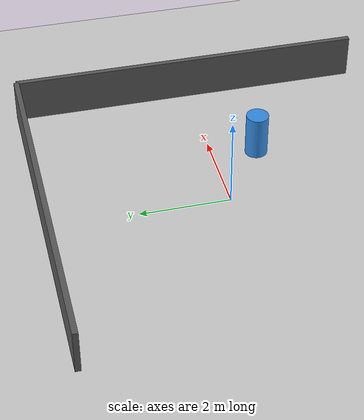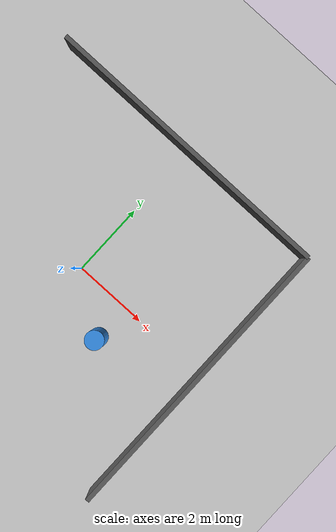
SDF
<?xml version="1.0" ?>
<sdf version="1.6">
  <world name="agt_operator_demo">
    <include>
      <uri>model://sun</uri>
    </include>
    <include>
      <uri>model://ground_plane</uri>
    </include>
    <model name="north_wall">
      <pose>0 4 0.5 0 0 0</pose>
      <static>true</static>
      <link name="link">
        <collision name="collision">
          <geometry><box><size>8 0.12 1.0</size></box></geometry>
        </collision>
        <visual name="visual">
          <geometry><box><size>8 0.12 1.0</size></box></geometry>
          <material><ambient>0.35 0.35 0.35 1</ambient></material>
        </visual>
      </link>
    </model>
    <model name="east_wall">
      <pose>4 0 0.5 0 0 0</pose>
      <static>true</static>
      <link name="link">
        <collision name="collision">
          <geometry><box><size>0.12 8 1.0</size></box></geometry>
        </collision>
        <visual name="visual">
          <geometry><box><size>0.12 8 1.0</size></box></geometry>
          <material><ambient>0.35 0.35 0.35 1</ambient></material>
        </visual>
      </link>
    </model>
    <model name="test_pillar">
      <pose>1.5 -1.0 0.5 0 0 0</pose>
      <static>true</static>
      <link name="link">
        <collision name="collision">
          <geometry><cylinder><radius>0.25</radius><length>1.0</length></cylinder></geometry>
        </collision>
        <visual name="visual">
          <geometry><cylinder><radius>0.25</radius><length>1.0</length></cylinder></geometry>
          <material><ambient>0.2 0.55 0.9 1</ambient></material>
        </visual>
      </link>
    </model>
  </world>
</sdf>
